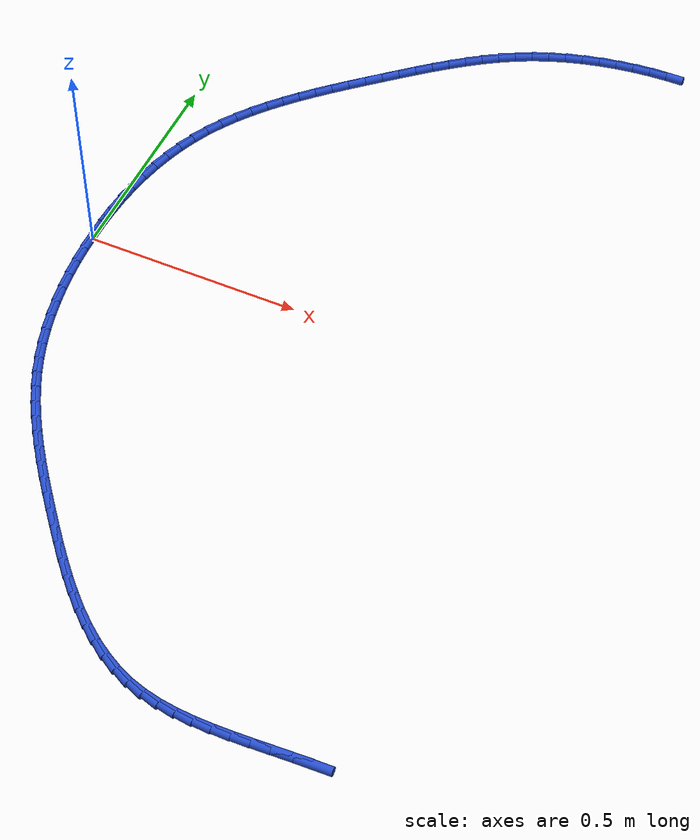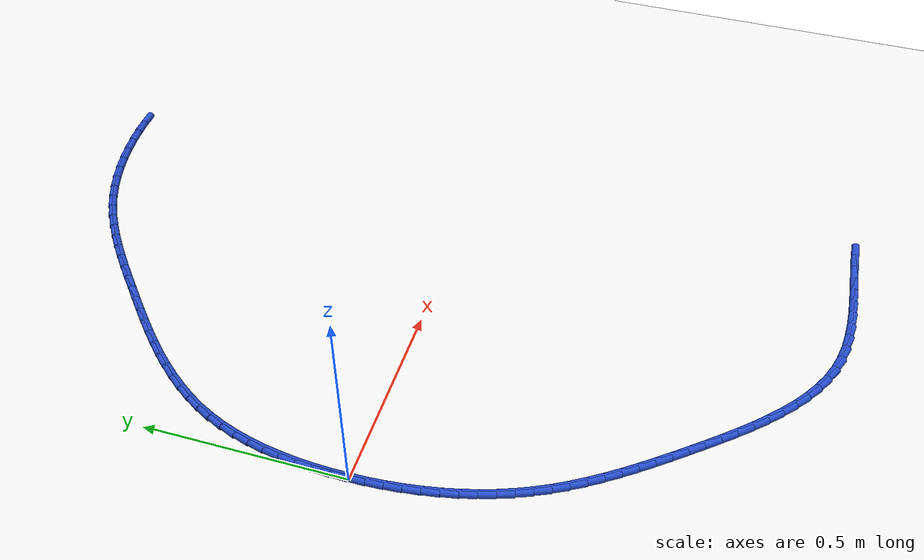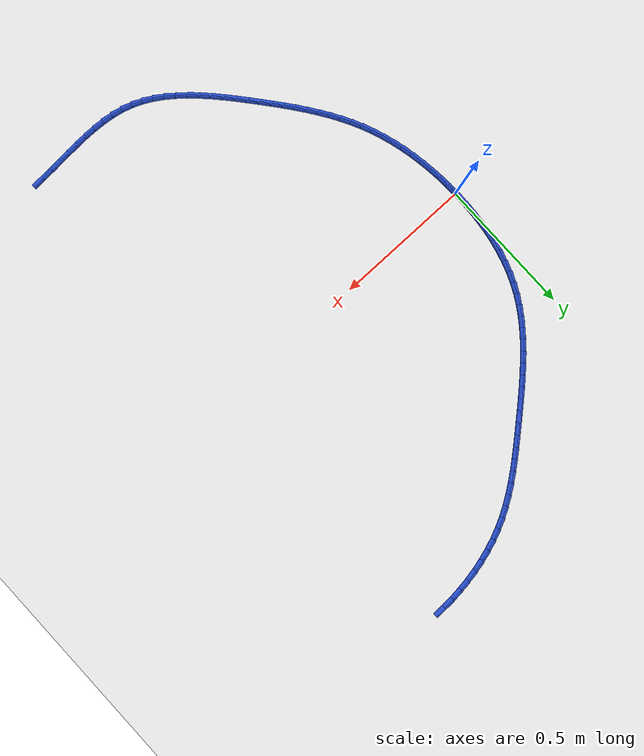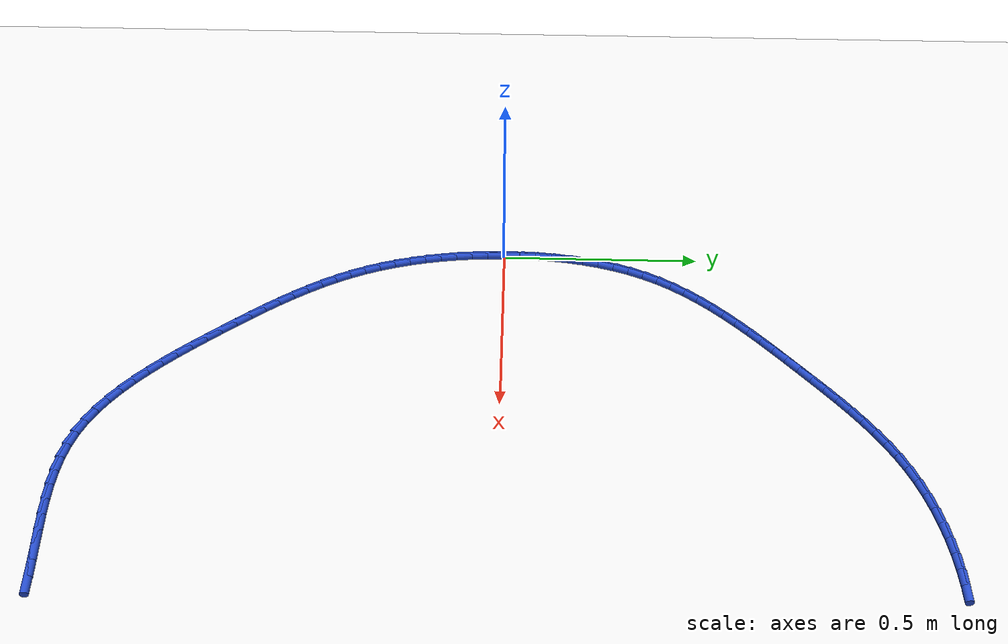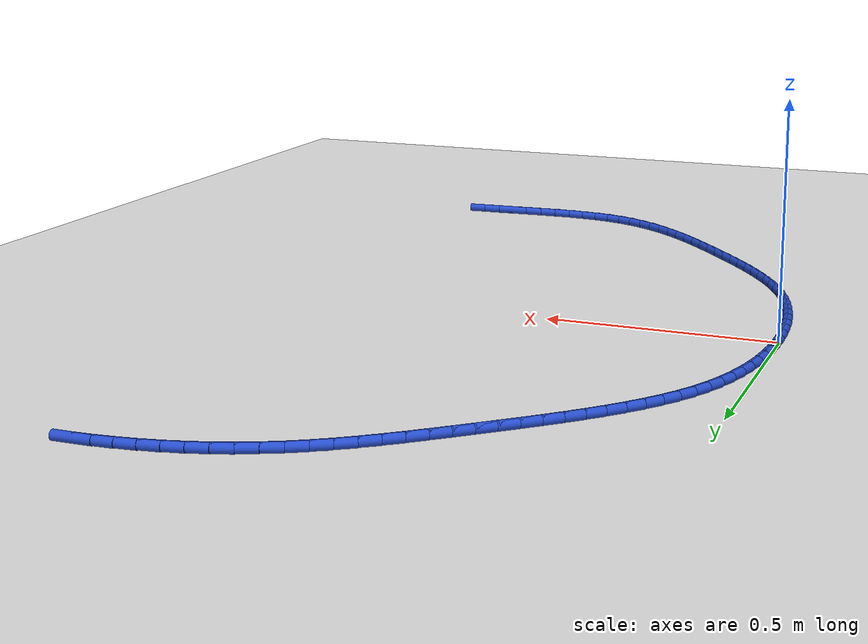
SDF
<sdf version="1.6">
 <world name="default">
  <model name="ground_plane">
   <static>1</static>
   <link name="link">
    <collision name="collision">
     <geometry><plane><normal>0 0 1</normal><size>100 100</size></plane></geometry>
     <surface><friction><ode><mu>100</mu><mu2>50</mu2></ode></friction></surface>
    </collision>
    <visual name="visual">
     <cast_shadows>0</cast_shadows>
     <geometry><plane><normal>0 0 1</normal><size>100 100</size></plane></geometry>
     <material>
      <script><uri>file://media/materials/scripts/gazebo.material</uri><name>Gazebo/WhiteGlow</name></script>
     </material>
    </visual>
   </link>
  </model>
  <model name="line">
   <link name="link_0">
    <pose>-7.806255641895632e-18 -4.163336342344337e-17 0.01 0 1.57 1.5649459969162127</pose>
    <collision name="collision">
     <geometry><cylinder><radius>0.01</radius><length>0.08</length></cylinder></geometry>
    </collision>
    <visual name="visual">
     <material>
      <script><name>Gazebo/Blue</name><uri>file://media/materials/scripts/gazebo.material</uri></script>
     </material>
     <geometry><cylinder><radius>0.01</radius><length>0.08</length></cylinder></geometry>
    </visual>
   </link>
   <link name="link_1">
    <pose>0.00024366222345821126 0.0416488383756562 0.01 0 1.57 1.5284976969318906</pose>
    <collision name="collision">
     <geometry><cylinder><radius>0.01</radius><length>0.08</length></cylinder></geometry>
    </collision>
    <visual name="visual">
     <material>
      <script><name>Gazebo/Blue</name><uri>file://media/materials/scripts/gazebo.material</uri></script>
     </material>
     <geometry><cylinder><radius>0.01</radius><length>0.08</length></cylinder></geometry>
    </visual>
   </link>
   <link name="link_2">
    <pose>0.0020040392612818473 0.08324184137865195 0.01 0 1.57 1.489297813799349</pose>
    <collision name="collision">
     <geometry><cylinder><radius>0.01</radius><length>0.08</length></cylinder></geometry>
    </collision>
    <visual name="visual">
     <material>
      <script><name>Gazebo/Blue</name><uri>file://media/materials/scripts/gazebo.material</uri></script>
     </material>
     <geometry><cylinder><radius>0.01</radius><length>0.08</length></cylinder></geometry>
    </visual>
   </link>
   <link name="link_3">
    <pose>0.005384640066235308 0.1246304840163369 0.01 0 1.57 1.4470444961710467</pose>
    <collision name="collision">
     <geometry><cylinder><radius>0.01</radius><length>0.08</length></cylinder></geometry>
    </collision>
    <visual name="visual">
     <material>
      <script><name>Gazebo/Blue</name><uri>file://media/materials/scripts/gazebo.material</uri></script>
     </material>
     <geometry><cylinder><radius>0.01</radius><length>0.08</length></cylinder></geometry>
    </visual>
   </link>
   <link name="link_4">
    <pose>0.01048897359108299 0.1656662412960608 0.01 0 1.57 1.4014295799699183</pose>
    <collision name="collision">
     <geometry><cylinder><radius>0.01</radius><length>0.08</length></cylinder></geometry>
    </collision>
    <visual name="visual">
     <material>
      <script><name>Gazebo/Blue</name><uri>file://media/materials/scripts/gazebo.material</uri></script>
     </material>
     <geometry><cylinder><radius>0.01</radius><length>0.08</length></cylinder></geometry>
    </visual>
   </link>
   <link name="link_5">
    <pose>0.0174205487885893 0.20620058822517334 0.01 0 1.57 1.3521483288717062</pose>
    <collision name="collision">
     <geometry><cylinder><radius>0.01</radius><length>0.08</length></cylinder></geometry>
    </collision>
    <visual name="visual">
     <material>
      <script><name>Gazebo/Blue</name><uri>file://media/materials/scripts/gazebo.material</uri></script>
     </material>
     <geometry><cylinder><radius>0.01</radius><length>0.08</length></cylinder></geometry>
    </visual>
   </link>
   <link name="link_6">
    <pose>0.026282874611518646 0.2460849998110243 0.01 0 1.57 1.2989144465532263</pose>
    <collision name="collision">
     <geometry><cylinder><radius>0.01</radius><length>0.08</length></cylinder></geometry>
    </collision>
    <visual name="visual">
     <material>
      <script><name>Gazebo/Blue</name><uri>file://media/materials/scripts/gazebo.material</uri></script>
     </material>
     <geometry><cylinder><radius>0.01</radius><length>0.08</length></cylinder></geometry>
    </visual>
   </link>
   <link name="link_7">
    <pose>0.037179460012635425 0.2851709510609634 0.01 0 1.57 1.2414814882196221</pose>
    <collision name="collision">
     <geometry><cylinder><radius>0.01</radius><length>0.08</length></cylinder></geometry>
    </collision>
    <visual name="visual">
     <material>
      <script><name>Gazebo/Blue</name><uri>file://media/materials/scripts/gazebo.material</uri></script>
     </material>
     <geometry><cylinder><radius>0.01</radius><length>0.08</length></cylinder></geometry>
    </visual>
   </link>
   <link name="link_8">
    <pose>0.05021381394470403 0.3233099169823404 0.01 0 1.57 1.1796713499881897</pose>
    <collision name="collision">
     <geometry><cylinder><radius>0.01</radius><length>0.08</length></cylinder></geometry>
    </collision>
    <visual name="visual">
     <material>
      <script><name>Gazebo/Blue</name><uri>file://media/materials/scripts/gazebo.material</uri></script>
     </material>
     <geometry><cylinder><radius>0.01</radius><length>0.08</length></cylinder></geometry>
    </visual>
   </link>
   <link name="link_9">
    <pose>0.06548944536048888 0.360353372582505 0.01 0 1.57 1.1135019314614432</pose>
    <collision name="collision">
     <geometry><cylinder><radius>0.01</radius><length>0.08</length></cylinder></geometry>
    </collision>
    <visual name="visual">
     <material>
      <script><name>Gazebo/Blue</name><uri>file://media/materials/scripts/gazebo.material</uri></script>
     </material>
     <geometry><cylinder><radius>0.01</radius><length>0.08</length></cylinder></geometry>
    </visual>
   </link>
   <link name="link_10">
    <pose>0.08310690623043958 0.39615514202409247 0.01 0 1.57 1.0471465379413225</pose>
    <collision name="collision">
     <geometry><cylinder><radius>0.01</radius><length>0.08</length></cylinder></geometry>
    </collision>
    <visual name="visual">
     <material>
      <script><name>Gazebo/Blue</name><uri>file://media/materials/scripts/gazebo.material</uri></script>
     </material>
     <geometry><cylinder><radius>0.01</radius><length>0.08</length></cylinder></geometry>
    </visual>
   </link>
   <link name="link_11">
    <pose>0.10303744204814254 0.43067177615568436 0.01 0 1.57 0.9865613505347274</pose>
    <collision name="collision">
     <geometry><cylinder><radius>0.01</radius><length>0.08</length></cylinder></geometry>
    </collision>
    <visual name="visual">
     <material>
      <script><name>Gazebo/Blue</name><uri>file://media/materials/scripts/gazebo.material</uri></script>
     </material>
     <geometry><cylinder><radius>0.01</radius><length>0.08</length></cylinder></geometry>
    </visual>
   </link>
   <link name="link_12">
    <pose>0.1250755141462379 0.4640002708478141 0.01 0 1.57 0.9324409511440511</pose>
    <collision name="collision">
     <geometry><cylinder><radius>0.01</radius><length>0.08</length></cylinder></geometry>
    </collision>
    <visual name="visual">
     <material>
      <script><name>Gazebo/Blue</name><uri>file://media/materials/scripts/gazebo.material</uri></script>
     </material>
     <geometry><cylinder><radius>0.01</radius><length>0.08</length></cylinder></geometry>
    </visual>
   </link>
   <link name="link_13">
    <pose>0.14900283923948468 0.4962477468494464 0.01 0 1.57 0.8848595708796757</pose>
    <collision name="collision">
     <geometry><cylinder><radius>0.01</radius><length>0.08</length></cylinder></geometry>
    </collision>
    <visual name="visual">
     <material>
      <script><name>Gazebo/Blue</name><uri>file://media/materials/scripts/gazebo.material</uri></script>
     </material>
     <geometry><cylinder><radius>0.01</radius><length>0.08</length></cylinder></geometry>
    </visual>
   </link>
   <link name="link_14">
    <pose>0.17460113404264208 0.5275213249095465 0.01 0 1.57 0.8437368528639989</pose>
    <collision name="collision">
     <geometry><cylinder><radius>0.01</radius><length>0.08</length></cylinder></geometry>
    </collision>
    <visual name="visual">
     <material>
      <script><name>Gazebo/Blue</name><uri>file://media/materials/scripts/gazebo.material</uri></script>
     </material>
     <geometry><cylinder><radius>0.01</radius><length>0.08</length></cylinder></geometry>
    </visual>
   </link>
   <link name="link_15">
    <pose>0.20165211527046892 0.5579281257770786 0.01 0 1.57 0.8088998016578195</pose>
    <collision name="collision">
     <geometry><cylinder><radius>0.01</radius><length>0.08</length></cylinder></geometry>
    </collision>
    <visual name="visual">
     <material>
      <script><name>Gazebo/Blue</name><uri>file://media/materials/scripts/gazebo.material</uri></script>
     </material>
     <geometry><cylinder><radius>0.01</radius><length>0.08</length></cylinder></geometry>
    </visual>
   </link>
   <link name="link_16">
    <pose>0.22993749963772456 0.5875752702010081 0.01 0 1.57 0.7801337874116763</pose>
    <collision name="collision">
     <geometry><cylinder><radius>0.01</radius><length>0.08</length></cylinder></geometry>
    </collision>
    <visual name="visual">
     <material>
      <script><name>Gazebo/Blue</name><uri>file://media/materials/scripts/gazebo.material</uri></script>
     </material>
     <geometry><cylinder><radius>0.01</radius><length>0.08</length></cylinder></geometry>
    </visual>
   </link>
   <link name="link_17">
    <pose>0.25923900385916776 0.6165698789302991 0.01 0 1.57 0.7572213645388868</pose>
    <collision name="collision">
     <geometry><cylinder><radius>0.01</radius><length>0.08</length></cylinder></geometry>
    </collision>
    <visual name="visual">
     <material>
      <script><name>Gazebo/Blue</name><uri>file://media/materials/scripts/gazebo.material</uri></script>
     </material>
     <geometry><cylinder><radius>0.01</radius><length>0.08</length></cylinder></geometry>
    </visual>
   </link>
   <link name="link_18">
    <pose>0.2893383446495577 0.6450190727139168 0.01 0 1.57 0.7399701808898237</pose>
    <collision name="collision">
     <geometry><cylinder><radius>0.01</radius><length>0.08</length></cylinder></geometry>
    </collision>
    <visual name="visual">
     <material>
      <script><name>Gazebo/Blue</name><uri>file://media/materials/scripts/gazebo.material</uri></script>
     </material>
     <geometry><cylinder><radius>0.01</radius><length>0.08</length></cylinder></geometry>
    </visual>
   </link>
   <link name="link_19">
    <pose>0.3200172387236534 0.6730299723008258 0.01 0 1.57 0.7282322431111798</pose>
    <collision name="collision">
     <geometry><cylinder><radius>0.01</radius><length>0.08</length></cylinder></geometry>
    </collision>
    <visual name="visual">
     <material>
      <script><name>Gazebo/Blue</name><uri>file://media/materials/scripts/gazebo.material</uri></script>
     </material>
     <geometry><cylinder><radius>0.01</radius><length>0.08</length></cylinder></geometry>
    </visual>
   </link>
   <link name="link_20">
    <pose>0.3510574027962141 0.7007096984399913 0.01 0 1.57 0.7219168613986632</pose>
    <collision name="collision">
     <geometry><cylinder><radius>0.01</radius><length>0.08</length></cylinder></geometry>
    </collision>
    <visual name="visual">
     <material>
      <script><name>Gazebo/Blue</name><uri>file://media/materials/scripts/gazebo.material</uri></script>
     </material>
     <geometry><cylinder><radius>0.01</radius><length>0.08</length></cylinder></geometry>
    </visual>
   </link>
   <link name="link_21">
    <pose>0.3822405535819986 0.7281653718803776 0.01 0 1.57 0.7192367237158173</pose>
    <collision name="collision">
     <geometry><cylinder><radius>0.01</radius><length>0.08</length></cylinder></geometry>
    </collision>
    <visual name="visual">
     <material>
      <script><name>Gazebo/Blue</name><uri>file://media/materials/scripts/gazebo.material</uri></script>
     </material>
     <geometry><cylinder><radius>0.01</radius><length>0.08</length></cylinder></geometry>
    </visual>
   </link>
   <link name="link_22">
    <pose>0.41340263491358825 0.7554545791969168 0.01 0 1.57 0.7121385850961865</pose>
    <collision name="collision">
     <geometry><cylinder><radius>0.01</radius><length>0.08</length></cylinder></geometry>
    </collision>
    <visual name="visual">
     <material>
      <script><name>Gazebo/Blue</name><uri>file://media/materials/scripts/gazebo.material</uri></script>
     </material>
     <geometry><cylinder><radius>0.01</radius><length>0.08</length></cylinder></geometry>
    </visual>
   </link>
   <link name="link_23">
    <pose>0.44462687032180986 0.7824090274396907 0.01 0 1.57 0.698238150323742</pose>
    <collision name="collision">
     <geometry><cylinder><radius>0.01</radius><length>0.08</length></cylinder></geometry>
    </collision>
    <visual name="visual">
     <material>
      <script><name>Gazebo/Blue</name><uri>file://media/materials/scripts/gazebo.material</uri></script>
     </material>
     <geometry><cylinder><radius>0.01</radius><length>0.08</length></cylinder></geometry>
    </visual>
   </link>
   <link name="link_24">
    <pose>0.4760669299893694 0.8087960736277567 0.01 0 1.57 0.6774064158094336</pose>
    <collision name="collision">
     <geometry><cylinder><radius>0.01</radius><length>0.08</length></cylinder></geometry>
    </collision>
    <visual name="visual">
     <material>
      <script><name>Gazebo/Blue</name><uri>file://media/materials/scripts/gazebo.material</uri></script>
     </material>
     <geometry><cylinder><radius>0.01</radius><length>0.08</length></cylinder></geometry>
    </visual>
   </link>
   <link name="link_25">
    <pose>0.5078764892489078 0.8343830700759255 0.01 0 1.57 0.6495061133031699</pose>
    <collision name="collision">
     <geometry><cylinder><radius>0.01</radius><length>0.08</length></cylinder></geometry>
    </collision>
    <visual name="visual">
     <material>
      <script><name>Gazebo/Blue</name><uri>file://media/materials/scripts/gazebo.material</uri></script>
     </material>
     <geometry><cylinder><radius>0.01</radius><length>0.08</length></cylinder></geometry>
    </visual>
   </link>
   <link name="link_26">
    <pose>0.5402092234330662 0.8589373690990075 0.01 0 1.57 0.6144217082321504</pose>
    <collision name="collision">
     <geometry><cylinder><radius>0.01</radius><length>0.08</length></cylinder></geometry>
    </collision>
    <visual name="visual">
     <material>
      <script><name>Gazebo/Blue</name><uri>file://media/materials/scripts/gazebo.material</uri></script>
     </material>
     <geometry><cylinder><radius>0.01</radius><length>0.08</length></cylinder></geometry>
    </visual>
   </link>
   <link name="link_27">
    <pose>0.5732188078744854 0.882226323011813 0.01 0 1.57 0.5721024901566106</pose>
    <collision name="collision">
     <geometry><cylinder><radius>0.01</radius><length>0.08</length></cylinder></geometry>
    </collision>
    <visual name="visual">
     <material>
      <script><name>Gazebo/Blue</name><uri>file://media/materials/scripts/gazebo.material</uri></script>
     </material>
     <geometry><cylinder><radius>0.01</radius><length>0.08</length></cylinder></geometry>
    </visual>
   </link>
   <link name="link_28">
    <pose>0.607058917905806 0.9040172841291522 0.01 0 1.57 0.522618201694443</pose>
    <collision name="collision">
     <geometry><cylinder><radius>0.01</radius><length>0.08</length></cylinder></geometry>
    </collision>
    <visual name="visual">
     <material>
      <script><name>Gazebo/Blue</name><uri>file://media/materials/scripts/gazebo.material</uri></script>
     </material>
     <geometry><cylinder><radius>0.01</radius><length>0.08</length></cylinder></geometry>
    </visual>
   </link>
   <link name="link_29">
    <pose>0.6418832288596692 0.9240776047658356 0.01 0 1.57 0.46623008231712626</pose>
    <collision name="collision">
     <geometry><cylinder><radius>0.01</radius><length>0.08</length></cylinder></geometry>
    </collision>
    <visual name="visual">
     <material>
      <script><name>Gazebo/Blue</name><uri>file://media/materials/scripts/gazebo.material</uri></script>
     </material>
     <geometry><cylinder><radius>0.01</radius><length>0.08</length></cylinder></geometry>
    </visual>
   </link>
   <link name="link_30">
    <pose>0.6778451977279444 0.9421748280815396 0.01 0 1.57 0.4058939648808866</pose>
    <collision name="collision">
     <geometry><cylinder><radius>0.01</radius><length>0.08</length></cylinder></geometry>
    </collision>
    <visual name="visual">
     <material>
      <script><name>Gazebo/Blue</name><uri>file://media/materials/scripts/gazebo.material</uri></script>
     </material>
     <geometry><cylinder><radius>0.01</radius><length>0.08</length></cylinder></geometry>
    </visual>
   </link>
   <link name="link_31">
    <pose>0.7150153343546467 0.9581489987539107 0.01 0 1.57 0.3479993224994982</pose>
    <collision name="collision">
     <geometry><cylinder><radius>0.01</radius><length>0.08</length></cylinder></geometry>
    </collision>
    <visual name="visual">
     <material>
      <script><name>Gazebo/Blue</name><uri>file://media/materials/scripts/gazebo.material</uri></script>
     </material>
     <geometry><cylinder><radius>0.01</radius><length>0.08</length></cylinder></geometry>
    </visual>
   </link>
   <link name="link_32">
    <pose>0.7532566505563638 0.9720215290223849 0.01 0 1.57 0.2932633993868242</pose>
    <collision name="collision">
     <geometry><cylinder><radius>0.01</radius><length>0.08</length></cylinder></geometry>
    </collision>
    <visual name="visual">
     <material>
      <script><name>Gazebo/Blue</name><uri>file://media/materials/scripts/gazebo.material</uri></script>
     </material>
     <geometry><cylinder><radius>0.01</radius><length>0.08</length></cylinder></geometry>
    </visual>
   </link>
   <link name="link_33">
    <pose>0.7924002404395777 0.9838417294025015 0.01 0 1.57 0.24138657109106942</pose>
    <collision name="collision">
     <geometry><cylinder><radius>0.01</radius><length>0.08</length></cylinder></geometry>
    </collision>
    <visual name="visual">
     <material>
      <script><name>Gazebo/Blue</name><uri>file://media/materials/scripts/gazebo.material</uri></script>
     </material>
     <geometry><cylinder><radius>0.01</radius><length>0.08</length></cylinder></geometry>
    </visual>
   </link>
   <link name="link_34">
    <pose>0.832277198110771 0.9936589104097997 0.01 0 1.57 0.19204474803485463</pose>
    <collision name="collision">
     <geometry><cylinder><radius>0.01</radius><length>0.08</length></cylinder></geometry>
    </collision>
    <visual name="visual">
     <material>
      <script><name>Gazebo/Blue</name><uri>file://media/materials/scripts/gazebo.material</uri></script>
     </material>
     <geometry><cylinder><radius>0.01</radius><length>0.08</length></cylinder></geometry>
    </visual>
   </link>
   <link name="link_35">
    <pose>0.8727186176764252 1.001522382559818 0.01 0 1.57 0.1449007718088609</pose>
    <collision name="collision">
     <geometry><cylinder><radius>0.01</radius><length>0.08</length></cylinder></geometry>
    </collision>
    <visual name="visual">
     <material>
      <script><name>Gazebo/Blue</name><uri>file://media/materials/scripts/gazebo.material</uri></script>
     </material>
     <geometry><cylinder><radius>0.01</radius><length>0.08</length></cylinder></geometry>
    </visual>
   </link>
   <link name="link_36">
    <pose>0.9135555932430234 1.007481456368096 0.01 0 1.57 0.09961134950780197</pose>
    <collision name="collision">
     <geometry><cylinder><radius>0.01</radius><length>0.08</length></cylinder></geometry>
    </collision>
    <visual name="visual">
     <material>
      <script><name>Gazebo/Blue</name><uri>file://media/materials/scripts/gazebo.material</uri></script>
     </material>
     <geometry><cylinder><radius>0.01</radius><length>0.08</length></cylinder></geometry>
    </visual>
   </link>
   <link name="link_37">
    <pose>0.9546192189170475 1.0115854423501731 0.01 0 1.57 0.05583034615350159</pose>
    <collision name="collision">
     <geometry><cylinder><radius>0.01</radius><length>0.08</length></cylinder></geometry>
    </collision>
    <visual name="visual">
     <material>
      <script><name>Gazebo/Blue</name><uri>file://media/materials/scripts/gazebo.material</uri></script>
     </material>
     <geometry><cylinder><radius>0.01</radius><length>0.08</length></cylinder></geometry>
    </visual>
   </link>
   <link name="link_38">
    <pose>0.9957405888049795 1.0138836510215876 0.01 0 1.57 0.013209159171409149</pose>
    <collision name="collision">
     <geometry><cylinder><radius>0.01</radius><length>0.08</length></cylinder></geometry>
    </collision>
    <visual name="visual">
     <material>
      <script><name>Gazebo/Blue</name><uri>file://media/materials/scripts/gazebo.material</uri></script>
     </material>
     <geometry><cylinder><radius>0.01</radius><length>0.08</length></cylinder></geometry>
    </visual>
   </link>
   <link name="link_120">
    <pose>1.0284546279664017 -1.0057660118473242 0.01 0 1.57 0.04554540533178004</pose>
    <collision name="collision">
     <geometry><cylinder><radius>0.01</radius><length>0.08</length></cylinder></geometry>
    </collision>
    <visual name="visual">
     <material>
      <script><name>Gazebo/Blue</name><uri>file://media/materials/scripts/gazebo.material</uri></script>
     </material>
     <geometry><cylinder><radius>0.01</radius><length>0.08</length></cylinder></geometry>
    </visual>
   </link>
   <link name="link_121">
    <pose>0.9857421060976302 -1.0077127172262303 0.01 0 1.57 0.05936117072174338</pose>
    <collision name="collision">
     <geometry><cylinder><radius>0.01</radius><length>0.08</length></cylinder></geometry>
    </collision>
    <visual name="visual">
     <material>
      <script><name>Gazebo/Blue</name><uri>file://media/materials/scripts/gazebo.material</uri></script>
     </material>
     <geometry><cylinder><radius>0.01</radius><length>0.08</length></cylinder></geometry>
    </visual>
   </link>
   <link name="link_122">
    <pose>0.9432416213628418 -1.0102385632689939 0.01 0 1.57 0.06166515474848055</pose>
    <collision name="collision">
     <geometry><cylinder><radius>0.01</radius><length>0.08</length></cylinder></geometry>
    </collision>
    <visual name="visual">
     <material>
      <script><name>Gazebo/Blue</name><uri>file://media/materials/scripts/gazebo.material</uri></script>
     </material>
     <geometry><cylinder><radius>0.01</radius><length>0.08</length></cylinder></geometry>
    </visual>
   </link>
   <link name="link_123">
    <pose>0.9010675470407032 -1.0128425355395807 0.01 0 1.57 0.052214946375331646</pose>
    <collision name="collision">
     <geometry><cylinder><radius>0.01</radius><length>0.08</length></cylinder></geometry>
    </collision>
    <visual name="visual">
     <material>
      <script><name>Gazebo/Blue</name><uri>file://media/materials/scripts/gazebo.material</uri></script>
     </material>
     <geometry><cylinder><radius>0.01</radius><length>0.08</length></cylinder></geometry>
    </visual>
   </link>
   <link name="link_124">
    <pose>0.8593342564098829 -1.0150236196019582 0.01 0 1.57 0.030520835170724712</pose>
    <collision name="collision">
     <geometry><cylinder><radius>0.01</radius><length>0.08</length></cylinder></geometry>
    </collision>
    <visual name="visual">
     <material>
      <script><name>Gazebo/Blue</name><uri>file://media/materials/scripts/gazebo.material</uri></script>
     </material>
     <geometry><cylinder><radius>0.01</radius><length>0.08</length></cylinder></geometry>
    </visual>
   </link>
   <link name="link_125">
    <pose>0.8181561227490479 -1.0162808010200926 0.01 0 1.57 -0.004140718004865224</pose>
    <collision name="collision">
     <geometry><cylinder><radius>0.01</radius><length>0.08</length></cylinder></geometry>
    </collision>
    <visual name="visual">
     <material>
      <script><name>Gazebo/Blue</name><uri>file://media/materials/scripts/gazebo.material</uri></script>
     </material>
     <geometry><cylinder><radius>0.01</radius><length>0.08</length></cylinder></geometry>
    </visual>
   </link>
   <link name="link_126">
    <pose>0.7776475193368659 -1.0161130653579509 0.01 0 1.57 -0.052655698941825486</pose>
    <collision name="collision">
     <geometry><cylinder><radius>0.01</radius><length>0.08</length></cylinder></geometry>
    </collision>
    <visual name="visual">
     <material>
      <script><name>Gazebo/Blue</name><uri>file://media/materials/scripts/gazebo.material</uri></script>
     </material>
     <geometry><cylinder><radius>0.01</radius><length>0.08</length></cylinder></geometry>
    </visual>
   </link>
   <link name="link_127">
    <pose>0.7379228194520059 -1.0140193981794994 0.01 0 1.57 -0.11590947085550804</pose>
    <collision name="collision">
     <geometry><cylinder><radius>0.01</radius><length>0.08</length></cylinder></geometry>
    </collision>
    <visual name="visual">
     <material>
      <script><name>Gazebo/Blue</name><uri>file://media/materials/scripts/gazebo.material</uri></script>
     </material>
     <geometry><cylinder><radius>0.01</radius><length>0.08</length></cylinder></geometry>
    </visual>
   </link>
   <link name="link_128">
    <pose>0.6990963963731353 -1.0094987850487056 0.01 0 1.57 -0.19449045485425934</pose>
    <collision name="collision">
     <geometry><cylinder><radius>0.01</radius><length>0.08</length></cylinder></geometry>
    </collision>
    <visual name="visual">
     <material>
      <script><name>Gazebo/Blue</name><uri>file://media/materials/scripts/gazebo.material</uri></script>
     </material>
     <geometry><cylinder><radius>0.01</radius><length>0.08</length></cylinder></geometry>
    </visual>
   </link>
   <link name="link_129">
    <pose>0.6612826233789216 -1.0020502115295356 0.01 0 1.57 -0.2882405147300786</pose>
    <collision name="collision">
     <geometry><cylinder><radius>0.01</radius><length>0.08</length></cylinder></geometry>
    </collision>
    <visual name="visual">
     <material>
      <script><name>Gazebo/Blue</name><uri>file://media/materials/scripts/gazebo.material</uri></script>
     </material>
     <geometry><cylinder><radius>0.01</radius><length>0.08</length></cylinder></geometry>
    </visual>
   </link>
   <link name="link_130">
    <pose>0.6245958709064406 -0.9911726766483802 0.01 0 1.57 -0.39134547273892345</pose>
    <collision name="collision">
     <geometry><cylinder><radius>0.01</radius><length>0.08</length></cylinder></geometry>
    </collision>
    <visual name="visual">
     <material>
      <script><name>Gazebo/Blue</name><uri>file://media/materials/scripts/gazebo.material</uri></script>
     </material>
     <geometry><cylinder><radius>0.01</radius><length>0.08</length></cylinder></geometry>
    </visual>
   </link>
   <link name="link_131">
    <pose>0.5891152243252021 -0.9765323471747441 0.01 0 1.57 -0.4865355419155607</pose>
    <collision name="collision">
     <geometry><cylinder><radius>0.01</radius><length>0.08</length></cylinder></geometry>
    </collision>
    <visual name="visual">
     <material>
      <script><name>Gazebo/Blue</name><uri>file://media/materials/scripts/gazebo.material</uri></script>
     </material>
     <geometry><cylinder><radius>0.01</radius><length>0.08</length></cylinder></geometry>
    </visual>
   </link>
   <link name="link_132">
    <pose>0.5547964631690698 -0.958379567823095 0.01 0 1.57 -0.5697704360123035</pose>
    <collision name="collision">
     <geometry><cylinder><radius>0.01</radius><length>0.08</length></cylinder></geometry>
    </collision>
    <visual name="visual">
     <material>
      <script><name>Gazebo/Blue</name><uri>file://media/materials/scripts/gazebo.material</uri></script>
     </material>
     <geometry><cylinder><radius>0.01</radius><length>0.08</length></cylinder></geometry>
    </visual>
   </link>
   <link name="link_133">
    <pose>0.5215684480444395 -0.9370922153394914 0.01 0 1.57 -0.6412667521096798</pose>
    <collision name="collision">
     <geometry><cylinder><radius>0.01</radius><length>0.08</length></cylinder></geometry>
    </collision>
    <visual name="visual">
     <material>
      <script><name>Gazebo/Blue</name><uri>file://media/materials/scripts/gazebo.material</uri></script>
     </material>
     <geometry><cylinder><radius>0.01</radius><length>0.08</length></cylinder></geometry>
    </visual>
   </link>
   <link name="link_134">
    <pose>0.48936003955770824 -0.9130481664699925 0.01 0 1.57 -0.7017374953260008</pose>
    <collision name="collision">
     <geometry><cylinder><radius>0.01</radius><length>0.08</length></cylinder></geometry>
    </collision>
    <visual name="visual">
     <material>
      <script><name>Gazebo/Blue</name><uri>file://media/materials/scripts/gazebo.material</uri></script>
     </material>
     <geometry><cylinder><radius>0.01</radius><length>0.08</length></cylinder></geometry>
    </visual>
   </link>
   <link name="link_135">
    <pose>0.45810009831527254 -0.886625297960657 0.01 0 1.57 -0.752101154778976</pose>
    <collision name="collision">
     <geometry><cylinder><radius>0.01</radius><length>0.08</length></cylinder></geometry>
    </collision>
    <visual name="visual">
     <material>
      <script><name>Gazebo/Blue</name><uri>file://media/materials/scripts/gazebo.material</uri></script>
     </material>
     <geometry><cylinder><radius>0.01</radius><length>0.08</length></cylinder></geometry>
    </visual>
   </link>
   <link name="link_136">
    <pose>0.4277174849235286 -0.8582014865575437 0.01 0 1.57 -0.793288414921303</pose>
    <collision name="collision">
     <geometry><cylinder><radius>0.01</radius><length>0.08</length></cylinder></geometry>
    </collision>
    <visual name="visual">
     <material>
      <script><name>Gazebo/Blue</name><uri>file://media/materials/scripts/gazebo.material</uri></script>
     </material>
     <geometry><cylinder><radius>0.01</radius><length>0.08</length></cylinder></geometry>
    </visual>
   </link>
   <link name="link_137">
    <pose>0.39814105998887456 -0.8281546090067122 0.01 0 1.57 -0.8261298349565054</pose>
    <collision name="collision">
     <geometry><cylinder><radius>0.01</radius><length>0.08</length></cylinder></geometry>
    </collision>
    <visual name="visual">
     <material>
      <script><name>Gazebo/Blue</name><uri>file://media/materials/scripts/gazebo.material</uri></script>
     </material>
     <geometry><cylinder><radius>0.01</radius><length>0.08</length></cylinder></geometry>
    </visual>
   </link>
   <link name="link_138">
    <pose>0.36929968411770625 -0.796862542054221 0.01 0 1.57 -0.8512973266575702</pose>
    <collision name="collision">
     <geometry><cylinder><radius>0.01</radius><length>0.08</length></cylinder></geometry>
    </collision>
    <visual name="visual">
     <material>
      <script><name>Gazebo/Blue</name><uri>file://media/materials/scripts/gazebo.material</uri></script>
     </material>
     <geometry><cylinder><radius>0.01</radius><length>0.08</length></cylinder></geometry>
    </visual>
   </link>
   <link name="link_139">
    <pose>0.34112221791642056 -0.7647031624461291 0.01 0 1.57 -0.8692756893055102</pose>
    <collision name="collision">
     <geometry><cylinder><radius>0.01</radius><length>0.08</length></cylinder></geometry>
    </collision>
    <visual name="visual">
     <material>
      <script><name>Gazebo/Blue</name><uri>file://media/materials/scripts/gazebo.material</uri></script>
     </material>
     <geometry><cylinder><radius>0.01</radius><length>0.08</length></cylinder></geometry>
    </visual>
   </link>
   <link name="link_140">
    <pose>0.3135375219914145 -0.7320543469284957 0.01 0 1.57 -0.8803727682476518</pose>
    <collision name="collision">
     <geometry><cylinder><radius>0.01</radius><length>0.08</length></cylinder></geometry>
    </collision>
    <visual name="visual">
     <material>
      <script><name>Gazebo/Blue</name><uri>file://media/materials/scripts/gazebo.material</uri></script>
     </material>
     <geometry><cylinder><radius>0.01</radius><length>0.08</length></cylinder></geometry>
    </visual>
   </link>
   <link name="link_141">
    <pose>0.2864749350699083 -0.6992928454697104 0.01 0 1.57 -0.8881483808579812</pose>
    <collision name="collision">
     <geometry><cylinder><radius>0.01</radius><length>0.08</length></cylinder></geometry>
    </collision>
    <visual name="visual">
     <material>
      <script><name>Gazebo/Blue</name><uri>file://media/materials/scripts/gazebo.material</uri></script>
     </material>
     <geometry><cylinder><radius>0.01</radius><length>0.08</length></cylinder></geometry>
    </visual>
   </link>
   <link name="link_142">
    <pose>0.2599286385431045 -0.6666425946445345 0.01 0 1.57 -0.8996353324429882</pose>
    <collision name="collision">
     <geometry><cylinder><radius>0.01</radius><length>0.08</length></cylinder></geometry>
    </collision>
    <visual name="visual">
     <material>
      <script><name>Gazebo/Blue</name><uri>file://media/materials/scripts/gazebo.material</uri></script>
     </material>
     <geometry><cylinder><radius>0.01</radius><length>0.08</length></cylinder></geometry>
    </visual>
   </link>
   <link name="link_143">
    <pose>0.23402269441640425 -0.634021444013337 0.01 0 1.57 -0.9157932119626694</pose>
    <collision name="collision">
     <geometry><cylinder><radius>0.01</radius><length>0.08</length></cylinder></geometry>
    </collision>
    <visual name="visual">
     <material>
      <script><name>Gazebo/Blue</name><uri>file://media/materials/scripts/gazebo.material</uri></script>
     </material>
     <geometry><cylinder><radius>0.01</radius><length>0.08</length></cylinder></geometry>
    </visual>
   </link>
   <link name="link_144">
    <pose>0.2088966530991585 -0.6013107419284252 0.01 0 1.57 -0.9367438196887872</pose>
    <collision name="collision">
     <geometry><cylinder><radius>0.01</radius><length>0.08</length></cylinder></geometry>
    </collision>
    <visual name="visual">
     <material>
      <script><name>Gazebo/Blue</name><uri>file://media/materials/scripts/gazebo.material</uri></script>
     </material>
     <geometry><cylinder><radius>0.01</radius><length>0.08</length></cylinder></geometry>
    </visual>
   </link>
   <link name="link_145">
    <pose>0.18469006500071794 -0.5683918367421044 0.01 0 1.57 -0.9625870371203091</pose>
    <collision name="collision">
     <geometry><cylinder><radius>0.01</radius><length>0.08</length></cylinder></geometry>
    </collision>
    <visual name="visual">
     <material>
      <script><name>Gazebo/Blue</name><uri>file://media/materials/scripts/gazebo.material</uri></script>
     </material>
     <geometry><cylinder><radius>0.01</radius><length>0.08</length></cylinder></geometry>
    </visual>
   </link>
   <link name="link_146">
    <pose>0.1615424805304331 -0.5351460768066799 0.01 0 1.57 -0.9933846334993407</pose>
    <collision name="collision">
     <geometry><cylinder><radius>0.01</radius><length>0.08</length></cylinder></geometry>
    </collision>
    <visual name="visual">
     <material>
      <script><name>Gazebo/Blue</name><uri>file://media/materials/scripts/gazebo.material</uri></script>
     </material>
     <geometry><cylinder><radius>0.01</radius><length>0.08</length></cylinder></geometry>
    </visual>
   </link>
   <link name="link_147">
    <pose>0.13959345009765559 -0.5014548104744592 0.01 0 1.57 -1.0291398277843058</pose>
    <collision name="collision">
     <geometry><cylinder><radius>0.01</radius><length>0.08</length></cylinder></geometry>
    </collision>
    <visual name="visual">
     <material>
      <script><name>Gazebo/Blue</name><uri>file://media/materials/scripts/gazebo.material</uri></script>
     </material>
     <geometry><cylinder><radius>0.01</radius><length>0.08</length></cylinder></geometry>
    </visual>
   </link>
   <link name="link_148">
    <pose>0.11898252411173582 -0.4671993860977478 0.01 0 1.57 -1.069773501387717</pose>
    <collision name="collision">
     <geometry><cylinder><radius>0.01</radius><length>0.08</length></cylinder></geometry>
    </collision>
    <visual name="visual">
     <material>
      <script><name>Gazebo/Blue</name><uri>file://media/materials/scripts/gazebo.material</uri></script>
     </material>
     <geometry><cylinder><radius>0.01</radius><length>0.08</length></cylinder></geometry>
    </visual>
   </link>
   <link name="link_149">
    <pose>0.0998492529820246 -0.4322611520288517 0.01 0 1.57 -1.1150991098559104</pose>
    <collision name="collision">
     <geometry><cylinder><radius>0.01</radius><length>0.08</length></cylinder></geometry>
    </collision>
    <visual name="visual">
     <material>
      <script><name>Gazebo/Blue</name><uri>file://media/materials/scripts/gazebo.material</uri></script>
     </material>
     <geometry><cylinder><radius>0.01</radius><length>0.08</length></cylinder></geometry>
    </visual>
   </link>
   <link name="link_150">
    <pose>0.0823331871178728 -0.3965214566200769 0.01 0 1.57 -1.1645527939008946</pose>
    <collision name="collision">
     <geometry><cylinder><radius>0.01</radius><length>0.08</length></cylinder></geometry>
    </collision>
    <visual name="visual">
     <material>
      <script><name>Gazebo/Blue</name><uri>file://media/materials/scripts/gazebo.material</uri></script>
     </material>
     <geometry><cylinder><radius>0.01</radius><length>0.08</length></cylinder></geometry>
    </visual>
   </link>
   <link name="link_151">
    <pose>0.06656671687042509 -0.35986994004634176 0.01 0 1.57 -1.2143783433894348</pose>
    <collision name="collision">
     <geometry><cylinder><radius>0.01</radius><length>0.08</length></cylinder></geometry>
    </collision>
    <visual name="visual">
     <material>
      <script><name>Gazebo/Blue</name><uri>file://media/materials/scripts/gazebo.material</uri></script>
     </material>
     <geometry><cylinder><radius>0.01</radius><length>0.08</length></cylinder></geometry>
    </visual>
   </link>
   <link name="link_152">
    <pose>0.0525829134198606 -0.3223112606743261 0.01 0 1.57 -1.2620378754932202</pose>
    <collision name="collision">
     <geometry><cylinder><radius>0.01</radius><length>0.08</length></cylinder></geometry>
    </collision>
    <visual name="visual">
     <material>
      <script><name>Gazebo/Blue</name><uri>file://media/materials/scripts/gazebo.material</uri></script>
     </material>
     <geometry><cylinder><radius>0.01</radius><length>0.08</length></cylinder></geometry>
    </visual>
   </link>
   <link name="link_153">
    <pose>0.04034220222960375 -0.2839342054321808 0.01 0 1.57 -1.3075474163009342</pose>
    <collision name="collision">
     <geometry><cylinder><radius>0.01</radius><length>0.08</length></cylinder></geometry>
    </collision>
    <visual name="visual">
     <material>
      <script><name>Gazebo/Blue</name><uri>file://media/materials/scripts/gazebo.material</uri></script>
     </material>
     <geometry><cylinder><radius>0.01</radius><length>0.08</length></cylinder></geometry>
    </visual>
   </link>
   <link name="link_154">
    <pose>0.029803347499816217 -0.24482948510117314 0.01 0 1.57 -1.3510066515086878</pose>
    <collision name="collision">
     <geometry><cylinder><radius>0.01</radius><length>0.08</length></cylinder></geometry>
    </collision>
    <visual name="visual">
     <material>
      <script><name>Gazebo/Blue</name><uri>file://media/materials/scripts/gazebo.material</uri></script>
     </material>
     <geometry><cylinder><radius>0.01</radius><length>0.08</length></cylinder></geometry>
    </visual>
   </link>
   <link name="link_155">
    <pose>0.02092511343065965 -0.20508781046257082 0.01 0 1.57 -1.3925345216041614</pose>
    <collision name="collision">
     <geometry><cylinder><radius>0.01</radius><length>0.08</length></cylinder></geometry>
    </collision>
    <visual name="visual">
     <material>
      <script><name>Gazebo/Blue</name><uri>file://media/materials/scripts/gazebo.material</uri></script>
     </material>
     <geometry><cylinder><radius>0.01</radius><length>0.08</length></cylinder></geometry>
    </visual>
   </link>
   <link name="link_156">
    <pose>0.013666264222295617 -0.16479989229764053 0.01 0 1.57 -1.4322633049510196</pose>
    <collision name="collision">
     <geometry><cylinder><radius>0.01</radius><length>0.08</length></cylinder></geometry>
    </collision>
    <visual name="visual">
     <material>
      <script><name>Gazebo/Blue</name><uri>file://media/materials/scripts/gazebo.material</uri></script>
     </material>
     <geometry><cylinder><radius>0.01</radius><length>0.08</length></cylinder></geometry>
    </visual>
   </link>
   <link name="link_157">
    <pose>0.00798556407488605 -0.12405644138765125 0.01 0 1.57 -1.4703339005259806</pose>
    <collision name="collision">
     <geometry><cylinder><radius>0.01</radius><length>0.08</length></cylinder></geometry>
    </collision>
    <visual name="visual">
     <material>
      <script><name>Gazebo/Blue</name><uri>file://media/materials/scripts/gazebo.material</uri></script>
     </material>
     <geometry><cylinder><radius>0.01</radius><length>0.08</length></cylinder></geometry>
    </visual>
   </link>
   <link name="link_158">
    <pose>0.003841777188592474 -0.08294816851386971 0.01 0 1.57 -1.506892233796895</pose>
    <collision name="collision">
     <geometry><cylinder><radius>0.01</radius><length>0.08</length></cylinder></geometry>
    </collision>
    <visual name="visual">
     <material>
      <script><name>Gazebo/Blue</name><uri>file://media/materials/scripts/gazebo.material</uri></script>
     </material>
     <geometry><cylinder><radius>0.01</radius><length>0.08</length></cylinder></geometry>
    </visual>
   </link>
   <link name="link_159">
    <pose>0.0011936677635765638 -0.04156578445756343 0.01 0 1.57 -1.5420866608297177</pose>
    <collision name="collision">
     <geometry><cylinder><radius>0.01</radius><length>0.08</length></cylinder></geometry>
    </collision>
    <visual name="visual">
     <material>
      <script><name>Gazebo/Blue</name><uri>file://media/materials/scripts/gazebo.material</uri></script>
     </material>
     <geometry><cylinder><radius>0.01</radius><length>0.08</length></cylinder></geometry>
    </visual>
   </link>
   <link name="link_160">
    <pose>-1.3877787807814457e-17 8.326672684688674e-17 0.01 0 1.57 1.5655264250389047</pose>
    <collision name="collision">
     <geometry><cylinder><radius>0.01</radius><length>0.08</length></cylinder></geometry>
    </collision>
    <visual name="visual">
     <material>
      <script><name>Gazebo/Blue</name><uri>file://media/materials/scripts/gazebo.material</uri></script>
     </material>
     <geometry><cylinder><radius>0.01</radius><length>0.08</length></cylinder></geometry>
    </visual>
   </link>
   <link name="link_161">
    <pose>0.00021953809802443408 0.041658474077554054 0.01 0 1.57 1.565526425038905</pose>
    <collision name="collision">
     <geometry><cylinder><radius>0.01</radius><length>0.08</length></cylinder></geometry>
    </collision>
    <visual name="visual">
     <material>
      <script><name>Gazebo/Blue</name><uri>file://media/materials/scripts/gazebo.material</uri></script>
     </material>
     <geometry><cylinder><radius>0.01</radius><length>0.08</length></cylinder></geometry>
    </visual>
   </link>
  </model>
 </world>
</sdf>
